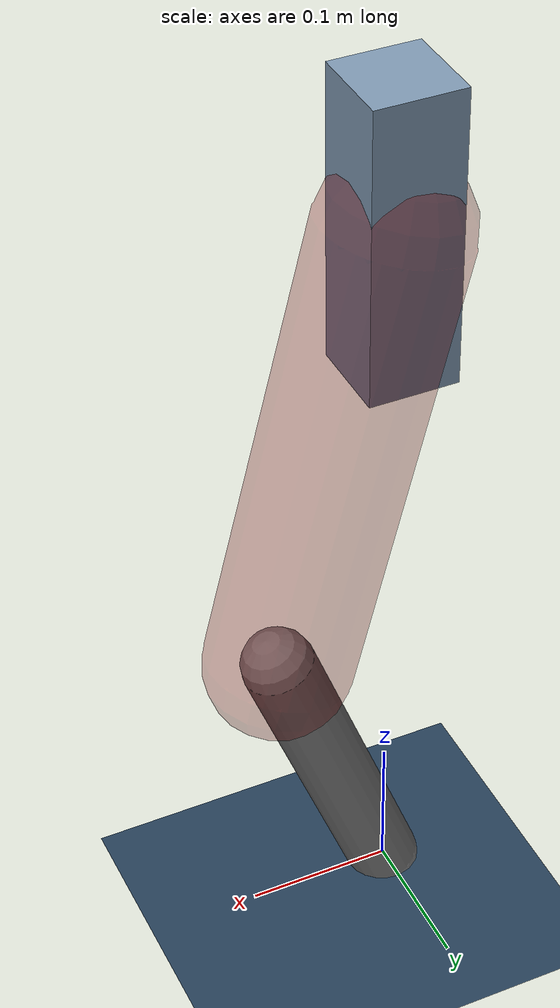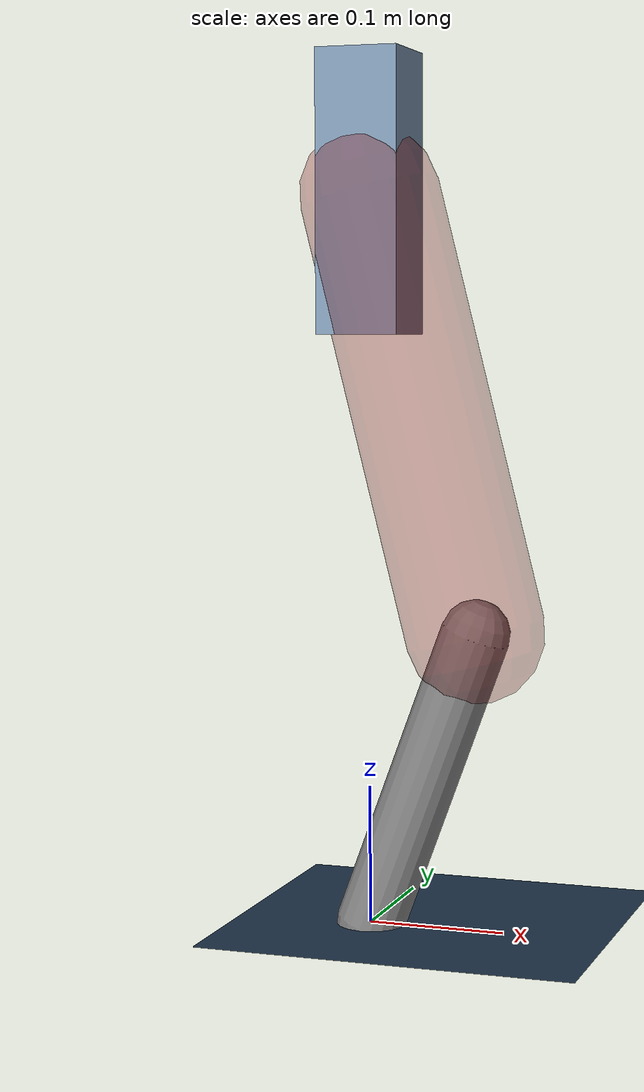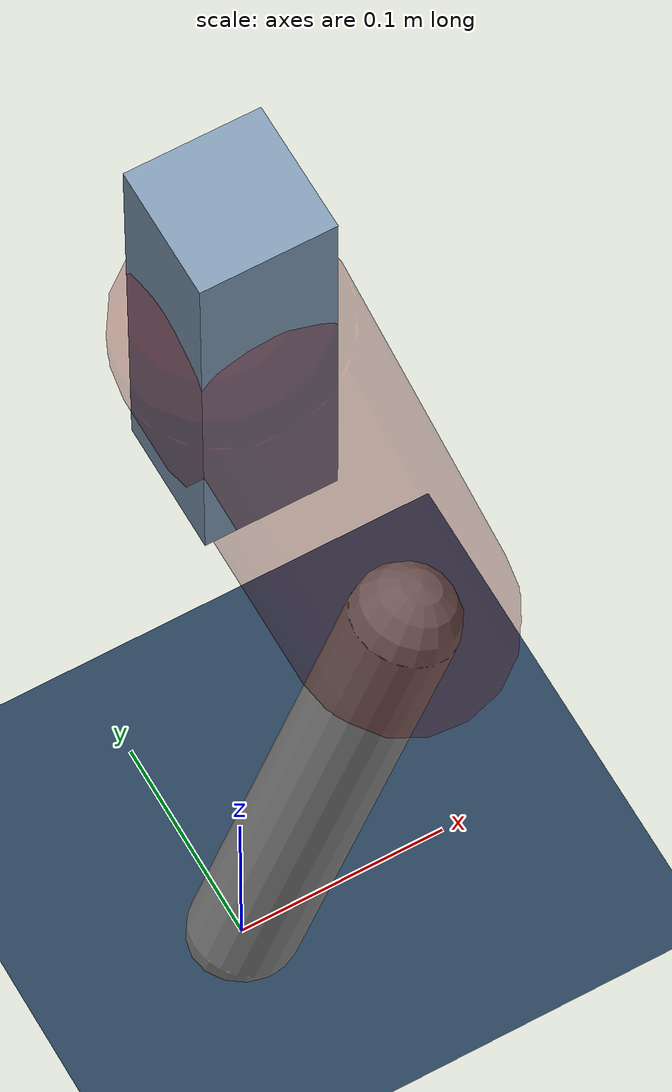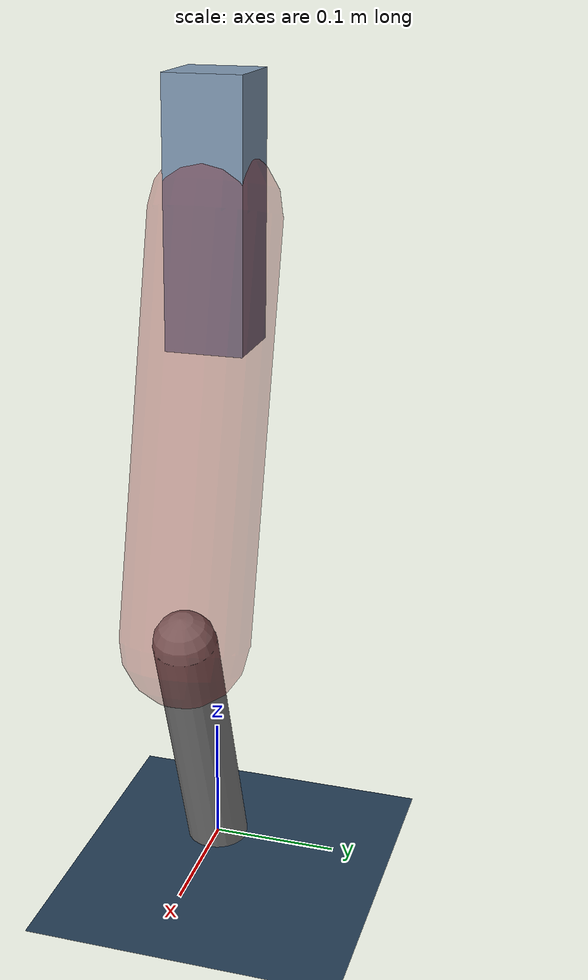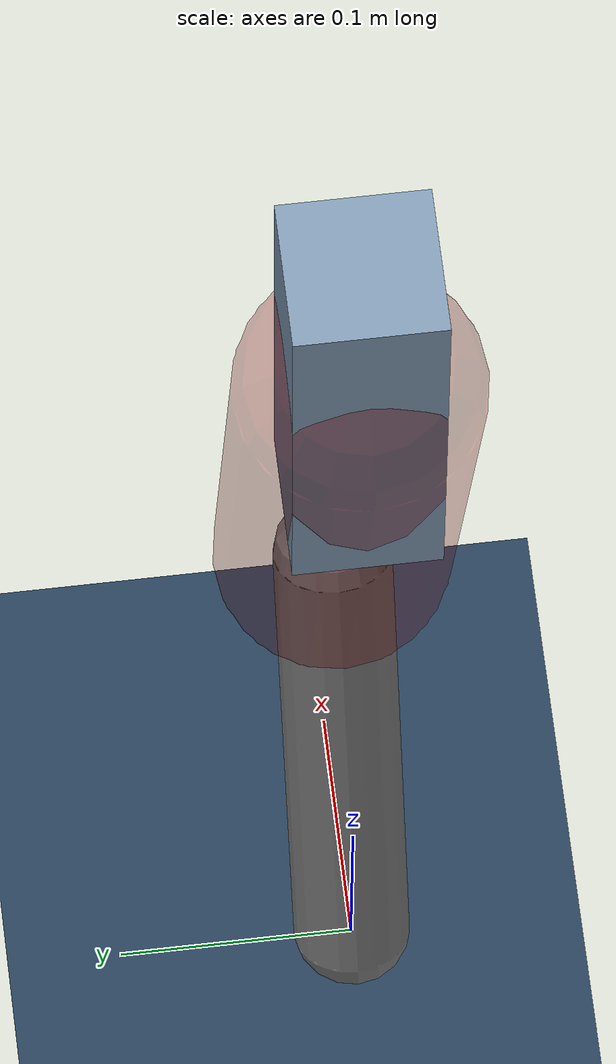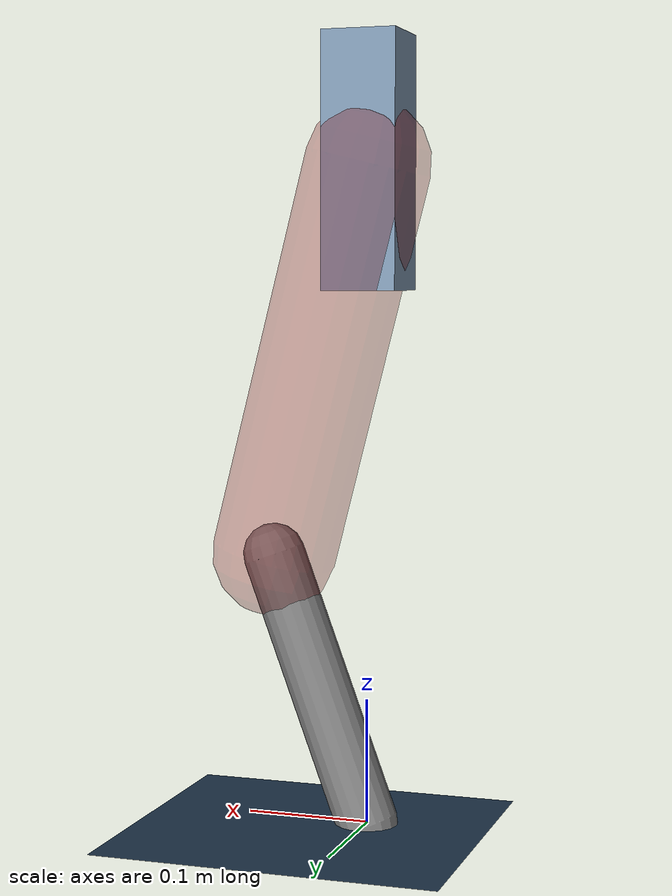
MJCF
<mujoco model="Hopper2D">
	<compiler inertiafromgeom="true" angle="radian" />
	<option timestep="0.001" integrator="implicit" cone="elliptic" solver="Newton" tolerance="1e-10" />

	<default>
		<geom contype="1" conaffinity="1" condim="3" friction="2 0.005 0.0001" solref="0.005 1" />
		<joint limited="true" damping="0.1" />
	</default>

	<asset>
		<texture name="skybox" type="skybox" builtin="gradient" rgb1=".4 .6 .8" rgb2="0 0 0" width="800" height="800" />
		<texture name="grid" type="2d" builtin="checker" rgb1=".1 .2 .3" rgb2=".2 .3 .4" width="300" height="300" mark="edge" markrgb=".2 .3 .4" />
		<material name="ground" texture="grid" texrepeat="1 1" texuniform="true" reflectance="0.1" />
		<material name="leg" rgba="0.5 0.6 0.7 1" />
	</asset>

	<worldbody>

		<geom name="floor" type="plane" size="5 5 0.25" material="ground" />

		<light directional="false" diffuse="0.8 0.8 0.8" specular="0.3 0.3 0.3" pos="0 0 2" dir="0 0 -1" />
		<light mode="targetbodycom" target="base" directional="false" diffuse="0.8 0.8 0.8" specular="0.3 0.3 0.3" pos="0 0 2" dir="0 0 -1" />

		<camera name="fixed" pos="0 -2 1" xyaxes="1 0 0 0 0 1" />
		<camera name="tracking" mode="trackcom" pos="0 -3 1" />

		<body name="root" pos="0 0 0.5274089741668966">
			<joint name="slide_x" type="slide" axis="1 0 0" range="-100 100" />
			<joint name="slide_z" type="slide" axis="0 0 1" range="0 10" />

			<body name="base" pos="0 0 0">
				<geom name="torso" type="box" size="0.03 0.03 0.1" mass="1.859" material="leg" />

				<body name="link1" pos="0 0 0" euler="0 1.322536494369942 0">
					<joint type="hinge" axis="0 -1 0" pos="0 0 0" name="hinge1" limited="true" range="-3.14 3.14" stiffness="0" damping="0.1" />
					<geom name="thigh" type="capsule" fromto="0 0 0 0.32243667627691286 0 0" size="0.05" rgba="0.5 0 0 0.3" mass="1.049922693575356" />

					<body name="link2" pos="0.32243667627691286 0 0" euler="0 0.6015379848457909 0">
						<joint type="hinge" axis="0 -1 0" pos="0 0 0" name="hinge2" limited="true" range="-3.14 3.14" stiffness="0" damping="0.1" />
						<geom name="shank" type="capsule" fromto="0 0 0 0.2289999424755944 0 0" size="0.025" mass="0.425199948228035" />

					</body>
				</body>
			</body>
		</body>
	</worldbody>

	<actuator>
		<motor name="torque1" joint="hinge1" ctrlrange="-60.275423219984305 60.275423219984305" ctrllimited="true" gear="1" />
		<motor name="torque2" joint="hinge2" ctrlrange="-76.82703516322266 76.82703516322266" ctrllimited="true" gear="1" />
	</actuator>
</mujoco>
